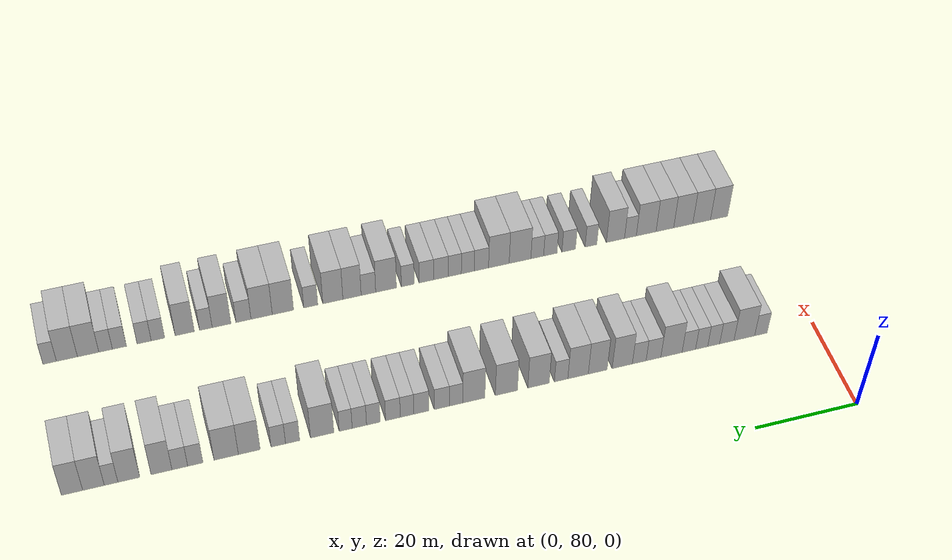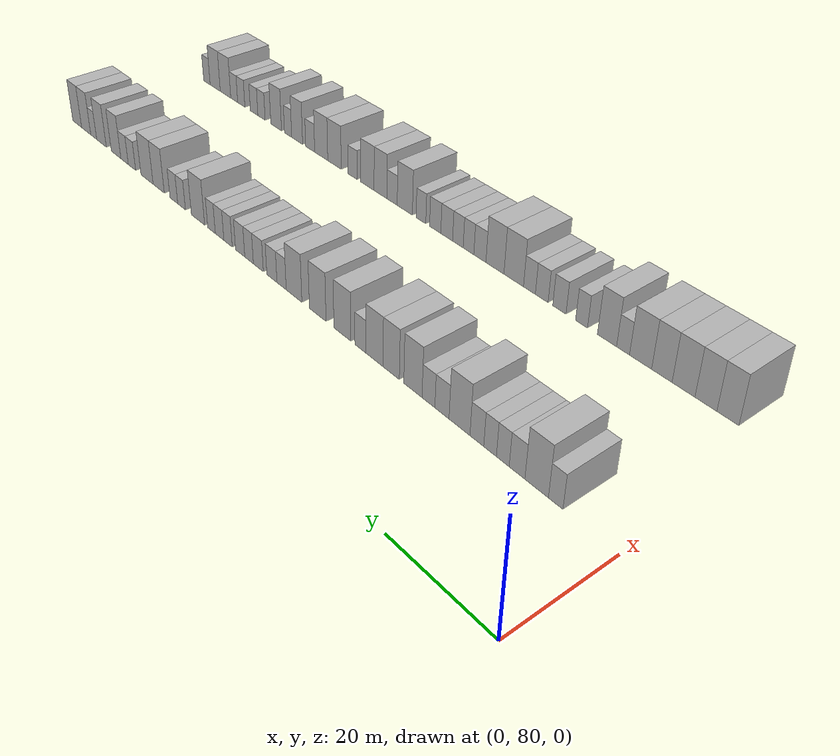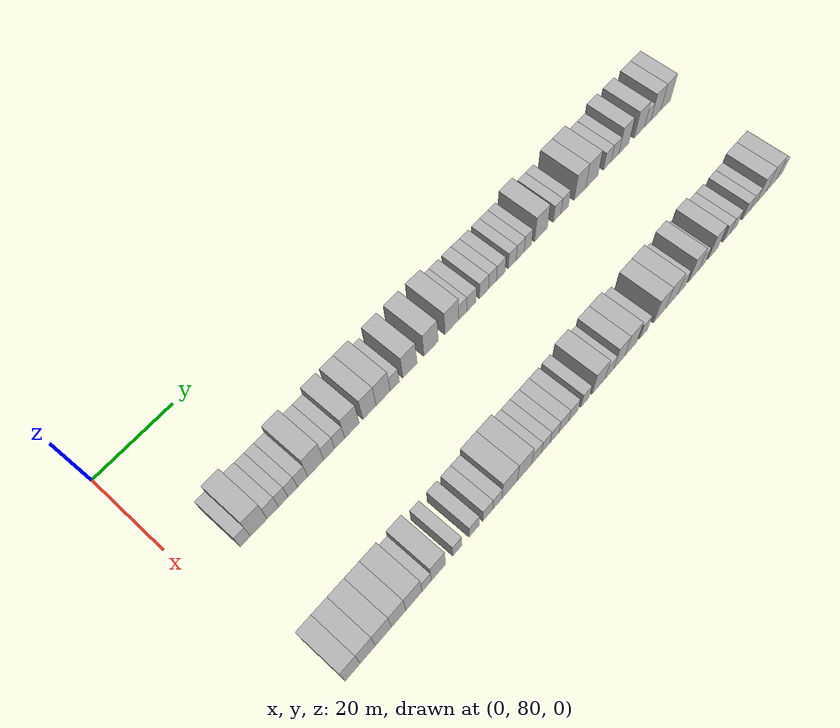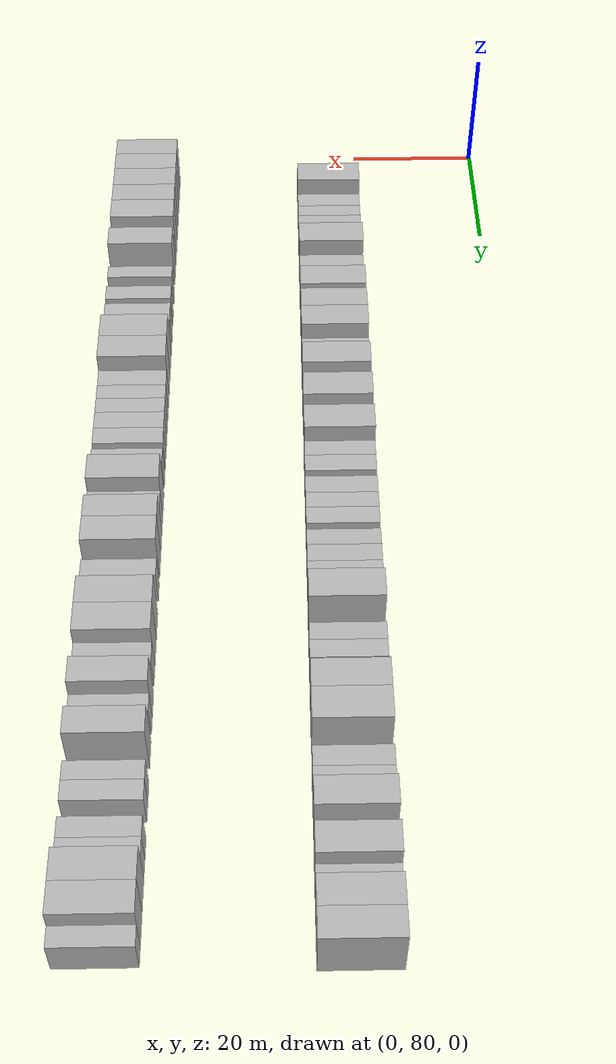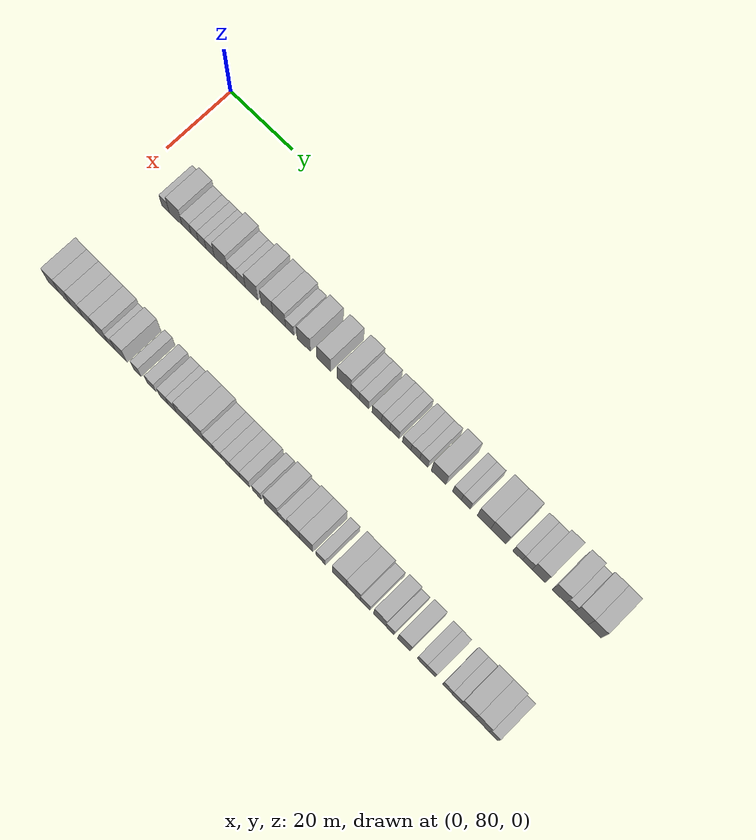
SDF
<sdf version="1.6">
 <world name="default">
  <model name="building_80">
   <static>1</static>
   <pose>25.0000 90.6061 0 0.000000 0.000000 0.000000</pose>
   <link name="link">
    <pose>0 0 3.00 0 0 0</pose>
    <collision name="collision"><geometry><box><size>10.0000 2.5271 6.0000</size></box></geometry></collision>
    <visual name="visual">
     <cast_shadows>0</cast_shadows>
     <geometry><box><size>10.0000 2.5271 6.0000</size></box></geometry>
     <material>
      <script>
       <uri>model://HANNAS_wall/materials/scripts</uri>
       <uri>model://HANNAS_wall/materials/textures</uri>
       <name>vrc/HANNAS_wall</name>
      </script>
     </material>
    </visual>
   </link>
  </model>
  <model name="building_81">
   <static>1</static>
   <pose>25.0000 93.9674 0 0.000000 0.000000 0.000000</pose>
   <link name="link">
    <pose>0 0 4.50 0 0 0</pose>
    <collision name="collision"><geometry><box><size>10.0000 4.1954 9.0000</size></box></geometry></collision>
    <visual name="visual">
     <cast_shadows>0</cast_shadows>
     <geometry><box><size>10.0000 4.1954 9.0000</size></box></geometry>
     <material>
      <script>
       <uri>model://HANNAS_wall/materials/scripts</uri>
       <uri>model://HANNAS_wall/materials/textures</uri>
       <name>vrc/HANNAS_wall</name>
      </script>
     </material>
    </visual>
   </link>
  </model>
  <model name="building_82">
   <static>1</static>
   <pose>25.0000 97.5112 0 0.000000 0.000000 0.000000</pose>
   <link name="link">
    <pose>0 0 3.00 0 0 0</pose>
    <collision name="collision"><geometry><box><size>10.0000 2.8922 6.0000</size></box></geometry></collision>
    <visual name="visual">
     <cast_shadows>0</cast_shadows>
     <geometry><box><size>10.0000 2.8922 6.0000</size></box></geometry>
     <material>
      <script>
       <uri>model://HANNAS_wall/materials/scripts</uri>
       <uri>model://HANNAS_wall/materials/textures</uri>
       <name>vrc/HANNAS_wall</name>
      </script>
     </material>
    </visual>
   </link>
  </model>
  <model name="building_83">
   <static>1</static>
   <pose>25.0000 100.1598 0 0.000000 0.000000 0.000000</pose>
   <link name="link">
    <pose>0 0 3.00 0 0 0</pose>
    <collision name="collision"><geometry><box><size>10.0000 2.4049 6.0000</size></box></geometry></collision>
    <visual name="visual">
     <cast_shadows>0</cast_shadows>
     <geometry><box><size>10.0000 2.4049 6.0000</size></box></geometry>
     <material>
      <script>
       <uri>model://HANNAS_wall/materials/scripts</uri>
       <uri>model://HANNAS_wall/materials/textures</uri>
       <name>vrc/HANNAS_wall</name>
      </script>
     </material>
    </visual>
   </link>
  </model>
  <model name="building_84">
   <static>1</static>
   <pose>25.0000 102.5787 0 0.000000 0.000000 0.000000</pose>
   <link name="link">
    <pose>0 0 3.00 0 0 0</pose>
    <collision name="collision"><geometry><box><size>10.0000 2.4330 6.0000</size></box></geometry></collision>
    <visual name="visual">
     <cast_shadows>0</cast_shadows>
     <geometry><box><size>10.0000 2.4330 6.0000</size></box></geometry>
     <material>
      <script>
       <uri>model://HANNAS_wall/materials/scripts</uri>
       <uri>model://HANNAS_wall/materials/textures</uri>
       <name>vrc/HANNAS_wall</name>
      </script>
     </material>
    </visual>
   </link>
  </model>
  <model name="building_85">
   <static>1</static>
   <pose>25.0000 105.1448 0 0.000000 0.000000 0.000000</pose>
   <link name="link">
    <pose>0 0 3.00 0 0 0</pose>
    <collision name="collision"><geometry><box><size>10.0000 2.6991 6.0000</size></box></geometry></collision>
    <visual name="visual">
     <cast_shadows>0</cast_shadows>
     <geometry><box><size>10.0000 2.6991 6.0000</size></box></geometry>
     <material>
      <script>
       <uri>model://HANNAS_wall/materials/scripts</uri>
       <uri>model://HANNAS_wall/materials/textures</uri>
       <name>vrc/HANNAS_wall</name>
      </script>
     </material>
    </visual>
   </link>
  </model>
  <model name="building_86">
   <static>1</static>
   <pose>25.0000 108.6109 0 0.000000 0.000000 0.000000</pose>
   <link name="link">
    <pose>0 0 4.50 0 0 0</pose>
    <collision name="collision"><geometry><box><size>10.0000 4.2332 9.0000</size></box></geometry></collision>
    <visual name="visual">
     <cast_shadows>0</cast_shadows>
     <geometry><box><size>10.0000 4.2332 9.0000</size></box></geometry>
     <material>
      <script>
       <uri>model://HANNAS_wall/materials/scripts</uri>
       <uri>model://HANNAS_wall/materials/textures</uri>
       <name>vrc/HANNAS_wall</name>
      </script>
     </material>
    </visual>
   </link>
  </model>
  <model name="building_87">
   <static>1</static>
   <pose>25.0000 112.1952 0 0.000000 0.000000 0.000000</pose>
   <link name="link">
    <pose>0 0 3.00 0 0 0</pose>
    <collision name="collision"><geometry><box><size>10.0000 2.9353 6.0000</size></box></geometry></collision>
    <visual name="visual">
     <cast_shadows>0</cast_shadows>
     <geometry><box><size>10.0000 2.9353 6.0000</size></box></geometry>
     <material>
      <script>
       <uri>model://HANNAS_wall/materials/scripts</uri>
       <uri>model://HANNAS_wall/materials/textures</uri>
       <name>vrc/HANNAS_wall</name>
      </script>
     </material>
    </visual>
   </link>
  </model>
  <model name="building_88">
   <static>1</static>
   <pose>25.0000 115.0275 0 0.000000 0.000000 0.000000</pose>
   <link name="link">
    <pose>0 0 3.00 0 0 0</pose>
    <collision name="collision"><geometry><box><size>10.0000 2.7293 6.0000</size></box></geometry></collision>
    <visual name="visual">
     <cast_shadows>0</cast_shadows>
     <geometry><box><size>10.0000 2.7293 6.0000</size></box></geometry>
     <material>
      <script>
       <uri>model://HANNAS_wall/materials/scripts</uri>
       <uri>model://HANNAS_wall/materials/textures</uri>
       <name>vrc/HANNAS_wall</name>
      </script>
     </material>
    </visual>
   </link>
  </model>
  <model name="building_89">
   <static>1</static>
   <pose>25.0000 118.3773 0 0.000000 0.000000 0.000000</pose>
   <link name="link">
    <pose>0 0 4.50 0 0 0</pose>
    <collision name="collision"><geometry><box><size>10.0000 3.9704 9.0000</size></box></geometry></collision>
    <visual name="visual">
     <cast_shadows>0</cast_shadows>
     <geometry><box><size>10.0000 3.9704 9.0000</size></box></geometry>
     <material>
      <script>
       <uri>model://HANNAS_wall/materials/scripts</uri>
       <uri>model://HANNAS_wall/materials/textures</uri>
       <name>vrc/HANNAS_wall</name>
      </script>
     </material>
    </visual>
   </link>
  </model>
  <model name="building_90">
   <static>1</static>
   <pose>25.0000 123.2086 0 0.000000 0.000000 0.000000</pose>
   <link name="link">
    <pose>0 0 4.50 0 0 0</pose>
    <collision name="collision"><geometry><box><size>10.0000 3.6923 9.0000</size></box></geometry></collision>
    <visual name="visual">
     <cast_shadows>0</cast_shadows>
     <geometry><box><size>10.0000 3.6923 9.0000</size></box></geometry>
     <material>
      <script>
       <uri>model://HANNAS_wall/materials/scripts</uri>
       <uri>model://HANNAS_wall/materials/textures</uri>
       <name>vrc/HANNAS_wall</name>
      </script>
     </material>
    </visual>
   </link>
  </model>
  <model name="building_91">
   <static>1</static>
   <pose>25.0000 127.0563 0 0.000000 0.000000 0.000000</pose>
   <link name="link">
    <pose>0 0 4.50 0 0 0</pose>
    <collision name="collision"><geometry><box><size>10.0000 4.0031 9.0000</size></box></geometry></collision>
    <visual name="visual">
     <cast_shadows>0</cast_shadows>
     <geometry><box><size>10.0000 4.0031 9.0000</size></box></geometry>
     <material>
      <script>
       <uri>model://HANNAS_wall/materials/scripts</uri>
       <uri>model://HANNAS_wall/materials/textures</uri>
       <name>vrc/HANNAS_wall</name>
      </script>
     </material>
    </visual>
   </link>
  </model>
  <model name="building_92">
   <static>1</static>
   <pose>25.0000 130.3652 0 0.000000 0.000000 0.000000</pose>
   <link name="link">
    <pose>0 0 3.00 0 0 0</pose>
    <collision name="collision"><geometry><box><size>10.0000 2.6148 6.0000</size></box></geometry></collision>
    <visual name="visual">
     <cast_shadows>0</cast_shadows>
     <geometry><box><size>10.0000 2.6148 6.0000</size></box></geometry>
     <material>
      <script>
       <uri>model://HANNAS_wall/materials/scripts</uri>
       <uri>model://HANNAS_wall/materials/textures</uri>
       <name>vrc/HANNAS_wall</name>
      </script>
     </material>
    </visual>
   </link>
  </model>
  <model name="building_93">
   <static>1</static>
   <pose>25.0000 134.7460 0 0.000000 0.000000 0.000000</pose>
   <link name="link">
    <pose>0 0 4.50 0 0 0</pose>
    <collision name="collision"><geometry><box><size>10.0000 4.1468 9.0000</size></box></geometry></collision>
    <visual name="visual">
     <cast_shadows>0</cast_shadows>
     <geometry><box><size>10.0000 4.1468 9.0000</size></box></geometry>
     <material>
      <script>
       <uri>model://HANNAS_wall/materials/scripts</uri>
       <uri>model://HANNAS_wall/materials/textures</uri>
       <name>vrc/HANNAS_wall</name>
      </script>
     </material>
    </visual>
   </link>
  </model>
  <model name="building_94">
   <static>1</static>
   <pose>25.0000 140.9554 0 0.000000 0.000000 0.000000</pose>
   <link name="link">
    <pose>0 0 4.50 0 0 0</pose>
    <collision name="collision"><geometry><box><size>10.0000 4.2720 9.0000</size></box></geometry></collision>
    <visual name="visual">
     <cast_shadows>0</cast_shadows>
     <geometry><box><size>10.0000 4.2720 9.0000</size></box></geometry>
     <material>
      <script>
       <uri>model://HANNAS_wall/materials/scripts</uri>
       <uri>model://HANNAS_wall/materials/textures</uri>
       <name>vrc/HANNAS_wall</name>
      </script>
     </material>
    </visual>
   </link>
  </model>
  <model name="building_95">
   <static>1</static>
   <pose>25.0000 147.2066 0 0.000000 0.000000 0.000000</pose>
   <link name="link">
    <pose>0 0 4.50 0 0 0</pose>
    <collision name="collision"><geometry><box><size>10.0000 4.2304 9.0000</size></box></geometry></collision>
    <visual name="visual">
     <cast_shadows>0</cast_shadows>
     <geometry><box><size>10.0000 4.2304 9.0000</size></box></geometry>
     <material>
      <script>
       <uri>model://HANNAS_wall/materials/scripts</uri>
       <uri>model://HANNAS_wall/materials/textures</uri>
       <name>vrc/HANNAS_wall</name>
      </script>
     </material>
    </visual>
   </link>
  </model>
  <model name="building_96">
   <static>1</static>
   <pose>25.0000 150.6025 0 0.000000 0.000000 0.000000</pose>
   <link name="link">
    <pose>0 0 3.00 0 0 0</pose>
    <collision name="collision"><geometry><box><size>10.0000 2.5614 6.0000</size></box></geometry></collision>
    <visual name="visual">
     <cast_shadows>0</cast_shadows>
     <geometry><box><size>10.0000 2.5614 6.0000</size></box></geometry>
     <material>
      <script>
       <uri>model://HANNAS_wall/materials/scripts</uri>
       <uri>model://HANNAS_wall/materials/textures</uri>
       <name>vrc/HANNAS_wall</name>
      </script>
     </material>
    </visual>
   </link>
  </model>
  <model name="building_97">
   <static>1</static>
   <pose>25.0000 153.3076 0 0.000000 0.000000 0.000000</pose>
   <link name="link">
    <pose>0 0 3.00 0 0 0</pose>
    <collision name="collision"><geometry><box><size>10.0000 2.8488 6.0000</size></box></geometry></collision>
    <visual name="visual">
     <cast_shadows>0</cast_shadows>
     <geometry><box><size>10.0000 2.8488 6.0000</size></box></geometry>
     <material>
      <script>
       <uri>model://HANNAS_wall/materials/scripts</uri>
       <uri>model://HANNAS_wall/materials/textures</uri>
       <name>vrc/HANNAS_wall</name>
      </script>
     </material>
    </visual>
   </link>
  </model>
  <model name="building_98">
   <static>1</static>
   <pose>25.0000 157.1678 0 0.000000 0.000000 0.000000</pose>
   <link name="link">
    <pose>0 0 3.00 0 0 0</pose>
    <collision name="collision"><geometry><box><size>10.0000 2.8716 6.0000</size></box></geometry></collision>
    <visual name="visual">
     <cast_shadows>0</cast_shadows>
     <geometry><box><size>10.0000 2.8716 6.0000</size></box></geometry>
     <material>
      <script>
       <uri>model://HANNAS_wall/materials/scripts</uri>
       <uri>model://HANNAS_wall/materials/textures</uri>
       <name>vrc/HANNAS_wall</name>
      </script>
     </material>
    </visual>
   </link>
  </model>
  <model name="building_99">
   <static>1</static>
   <pose>25.0000 159.8718 0 0.000000 0.000000 0.000000</pose>
   <link name="link">
    <pose>0 0 3.00 0 0 0</pose>
    <collision name="collision"><geometry><box><size>10.0000 2.5365 6.0000</size></box></geometry></collision>
    <visual name="visual">
     <cast_shadows>0</cast_shadows>
     <geometry><box><size>10.0000 2.5365 6.0000</size></box></geometry>
     <material>
      <script>
       <uri>model://HANNAS_wall/materials/scripts</uri>
       <uri>model://HANNAS_wall/materials/textures</uri>
       <name>vrc/HANNAS_wall</name>
      </script>
     </material>
    </visual>
   </link>
  </model>
  <model name="building_100">
   <static>1</static>
   <pose>25.0000 162.5219 0 0.000000 0.000000 0.000000</pose>
   <link name="link">
    <pose>0 0 3.00 0 0 0</pose>
    <collision name="collision"><geometry><box><size>10.0000 2.7637 6.0000</size></box></geometry></collision>
    <visual name="visual">
     <cast_shadows>0</cast_shadows>
     <geometry><box><size>10.0000 2.7637 6.0000</size></box></geometry>
     <material>
      <script>
       <uri>model://HANNAS_wall/materials/scripts</uri>
       <uri>model://HANNAS_wall/materials/textures</uri>
       <name>vrc/HANNAS_wall</name>
      </script>
     </material>
    </visual>
   </link>
  </model>
  <model name="building_101">
   <static>1</static>
   <pose>25.0000 166.1852 0 0.000000 0.000000 0.000000</pose>
   <link name="link">
    <pose>0 0 3.00 0 0 0</pose>
    <collision name="collision"><geometry><box><size>10.0000 2.5629 6.0000</size></box></geometry></collision>
    <visual name="visual">
     <cast_shadows>0</cast_shadows>
     <geometry><box><size>10.0000 2.5629 6.0000</size></box></geometry>
     <material>
      <script>
       <uri>model://HANNAS_wall/materials/scripts</uri>
       <uri>model://HANNAS_wall/materials/textures</uri>
       <name>vrc/HANNAS_wall</name>
      </script>
     </material>
    </visual>
   </link>
  </model>
  <model name="building_102">
   <static>1</static>
   <pose>25.0000 168.8038 0 0.000000 0.000000 0.000000</pose>
   <link name="link">
    <pose>0 0 3.00 0 0 0</pose>
    <collision name="collision"><geometry><box><size>10.0000 2.6742 6.0000</size></box></geometry></collision>
    <visual name="visual">
     <cast_shadows>0</cast_shadows>
     <geometry><box><size>10.0000 2.6742 6.0000</size></box></geometry>
     <material>
      <script>
       <uri>model://HANNAS_wall/materials/scripts</uri>
       <uri>model://HANNAS_wall/materials/textures</uri>
       <name>vrc/HANNAS_wall</name>
      </script>
     </material>
    </visual>
   </link>
  </model>
  <model name="building_103">
   <static>1</static>
   <pose>25.0000 171.3430 0 0.000000 0.000000 0.000000</pose>
   <link name="link">
    <pose>0 0 3.00 0 0 0</pose>
    <collision name="collision"><geometry><box><size>10.0000 2.4043 6.0000</size></box></geometry></collision>
    <visual name="visual">
     <cast_shadows>0</cast_shadows>
     <geometry><box><size>10.0000 2.4043 6.0000</size></box></geometry>
     <material>
      <script>
       <uri>model://HANNAS_wall/materials/scripts</uri>
       <uri>model://HANNAS_wall/materials/textures</uri>
       <name>vrc/HANNAS_wall</name>
      </script>
     </material>
    </visual>
   </link>
  </model>
  <model name="building_104">
   <static>1</static>
   <pose>25.0000 175.7016 0 0.000000 0.000000 0.000000</pose>
   <link name="link">
    <pose>0 0 4.50 0 0 0</pose>
    <collision name="collision"><geometry><box><size>10.0000 4.3127 9.0000</size></box></geometry></collision>
    <visual name="visual">
     <cast_shadows>0</cast_shadows>
     <geometry><box><size>10.0000 4.3127 9.0000</size></box></geometry>
     <material>
      <script>
       <uri>model://HANNAS_wall/materials/scripts</uri>
       <uri>model://HANNAS_wall/materials/textures</uri>
       <name>vrc/HANNAS_wall</name>
      </script>
     </material>
    </visual>
   </link>
  </model>
  <model name="building_105">
   <static>1</static>
   <pose>25.0000 181.1595 0 0.000000 0.000000 0.000000</pose>
   <link name="link">
    <pose>0 0 3.00 0 0 0</pose>
    <collision name="collision"><geometry><box><size>10.0000 2.6031 6.0000</size></box></geometry></collision>
    <visual name="visual">
     <cast_shadows>0</cast_shadows>
     <geometry><box><size>10.0000 2.6031 6.0000</size></box></geometry>
     <material>
      <script>
       <uri>model://HANNAS_wall/materials/scripts</uri>
       <uri>model://HANNAS_wall/materials/textures</uri>
       <name>vrc/HANNAS_wall</name>
      </script>
     </material>
    </visual>
   </link>
  </model>
  <model name="building_106">
   <static>1</static>
   <pose>25.0000 183.7843 0 0.000000 0.000000 0.000000</pose>
   <link name="link">
    <pose>0 0 3.00 0 0 0</pose>
    <collision name="collision"><geometry><box><size>10.0000 2.6465 6.0000</size></box></geometry></collision>
    <visual name="visual">
     <cast_shadows>0</cast_shadows>
     <geometry><box><size>10.0000 2.6465 6.0000</size></box></geometry>
     <material>
      <script>
       <uri>model://HANNAS_wall/materials/scripts</uri>
       <uri>model://HANNAS_wall/materials/textures</uri>
       <name>vrc/HANNAS_wall</name>
      </script>
     </material>
    </visual>
   </link>
  </model>
  <model name="building_107">
   <static>1</static>
   <pose>25.0000 189.0922 0 0.000000 0.000000 0.000000</pose>
   <link name="link">
    <pose>0 0 4.50 0 0 0</pose>
    <collision name="collision"><geometry><box><size>10.0000 3.9694 9.0000</size></box></geometry></collision>
    <visual name="visual">
     <cast_shadows>0</cast_shadows>
     <geometry><box><size>10.0000 3.9694 9.0000</size></box></geometry>
     <material>
      <script>
       <uri>model://HANNAS_wall/materials/scripts</uri>
       <uri>model://HANNAS_wall/materials/textures</uri>
       <name>vrc/HANNAS_wall</name>
      </script>
     </material>
    </visual>
   </link>
  </model>
  <model name="building_108">
   <static>1</static>
   <pose>25.0000 193.2853 0 0.000000 0.000000 0.000000</pose>
   <link name="link">
    <pose>0 0 4.50 0 0 0</pose>
    <collision name="collision"><geometry><box><size>10.0000 4.4167 9.0000</size></box></geometry></collision>
    <visual name="visual">
     <cast_shadows>0</cast_shadows>
     <geometry><box><size>10.0000 4.4167 9.0000</size></box></geometry>
     <material>
      <script>
       <uri>model://HANNAS_wall/materials/scripts</uri>
       <uri>model://HANNAS_wall/materials/textures</uri>
       <name>vrc/HANNAS_wall</name>
      </script>
     </material>
    </visual>
   </link>
  </model>
  <model name="building_109">
   <static>1</static>
   <pose>25.0000 198.8710 0 0.000000 0.000000 0.000000</pose>
   <link name="link">
    <pose>0 0 3.00 0 0 0</pose>
    <collision name="collision"><geometry><box><size>10.0000 2.7548 6.0000</size></box></geometry></collision>
    <visual name="visual">
     <cast_shadows>0</cast_shadows>
     <geometry><box><size>10.0000 2.7548 6.0000</size></box></geometry>
     <material>
      <script>
       <uri>model://HANNAS_wall/materials/scripts</uri>
       <uri>model://HANNAS_wall/materials/textures</uri>
       <name>vrc/HANNAS_wall</name>
      </script>
     </material>
    </visual>
   </link>
  </model>
  <model name="building_110">
   <static>1</static>
   <pose>25.0000 201.6601 0 0.000000 0.000000 0.000000</pose>
   <link name="link">
    <pose>0 0 3.00 0 0 0</pose>
    <collision name="collision"><geometry><box><size>10.0000 2.8233 6.0000</size></box></geometry></collision>
    <visual name="visual">
     <cast_shadows>0</cast_shadows>
     <geometry><box><size>10.0000 2.8233 6.0000</size></box></geometry>
     <material>
      <script>
       <uri>model://HANNAS_wall/materials/scripts</uri>
       <uri>model://HANNAS_wall/materials/textures</uri>
       <name>vrc/HANNAS_wall</name>
      </script>
     </material>
    </visual>
   </link>
  </model>
  <model name="building_111">
   <static>1</static>
   <pose>25.0000 204.9419 0 0.000000 0.000000 0.000000</pose>
   <link name="link">
    <pose>0 0 4.50 0 0 0</pose>
    <collision name="collision"><geometry><box><size>10.0000 3.7403 9.0000</size></box></geometry></collision>
    <visual name="visual">
     <cast_shadows>0</cast_shadows>
     <geometry><box><size>10.0000 3.7403 9.0000</size></box></geometry>
     <material>
      <script>
       <uri>model://HANNAS_wall/materials/scripts</uri>
       <uri>model://HANNAS_wall/materials/textures</uri>
       <name>vrc/HANNAS_wall</name>
      </script>
     </material>
    </visual>
   </link>
  </model>
  <model name="building_112">
   <static>1</static>
   <pose>25.0000 210.7597 0 0.000000 0.000000 0.000000</pose>
   <link name="link">
    <pose>0 0 4.50 0 0 0</pose>
    <collision name="collision"><geometry><box><size>10.0000 3.8953 9.0000</size></box></geometry></collision>
    <visual name="visual">
     <cast_shadows>0</cast_shadows>
     <geometry><box><size>10.0000 3.8953 9.0000</size></box></geometry>
     <material>
      <script>
       <uri>model://HANNAS_wall/materials/scripts</uri>
       <uri>model://HANNAS_wall/materials/textures</uri>
       <name>vrc/HANNAS_wall</name>
      </script>
     </material>
    </visual>
   </link>
  </model>
  <model name="building_113">
   <static>1</static>
   <pose>25.0000 213.9139 0 0.000000 0.000000 0.000000</pose>
   <link name="link">
    <pose>0 0 3.00 0 0 0</pose>
    <collision name="collision"><geometry><box><size>10.0000 2.4132 6.0000</size></box></geometry></collision>
    <visual name="visual">
     <cast_shadows>0</cast_shadows>
     <geometry><box><size>10.0000 2.4132 6.0000</size></box></geometry>
     <material>
      <script>
       <uri>model://HANNAS_wall/materials/scripts</uri>
       <uri>model://HANNAS_wall/materials/textures</uri>
       <name>vrc/HANNAS_wall</name>
      </script>
     </material>
    </visual>
   </link>
  </model>
  <model name="building_114">
   <static>1</static>
   <pose>25.0000 217.0253 0 0.000000 0.000000 0.000000</pose>
   <link name="link">
    <pose>0 0 4.50 0 0 0</pose>
    <collision name="collision"><geometry><box><size>10.0000 3.8096 9.0000</size></box></geometry></collision>
    <visual name="visual">
     <cast_shadows>0</cast_shadows>
     <geometry><box><size>10.0000 3.8096 9.0000</size></box></geometry>
     <material>
      <script>
       <uri>model://HANNAS_wall/materials/scripts</uri>
       <uri>model://HANNAS_wall/materials/textures</uri>
       <name>vrc/HANNAS_wall</name>
      </script>
     </material>
    </visual>
   </link>
  </model>
  <model name="building_115">
   <static>1</static>
   <pose>25.0000 220.8041 0 0.000000 0.000000 0.000000</pose>
   <link name="link">
    <pose>0 0 4.50 0 0 0</pose>
    <collision name="collision"><geometry><box><size>10.0000 3.7479 9.0000</size></box></geometry></collision>
    <visual name="visual">
     <cast_shadows>0</cast_shadows>
     <geometry><box><size>10.0000 3.7479 9.0000</size></box></geometry>
     <material>
      <script>
       <uri>model://HANNAS_wall/materials/scripts</uri>
       <uri>model://HANNAS_wall/materials/textures</uri>
       <name>vrc/HANNAS_wall</name>
      </script>
     </material>
    </visual>
   </link>
  </model>
  <model name="building_182">
   <static>1</static>
   <pose>55.0000 87.0166 0 0.000000 0.000000 0.000000</pose>
   <link name="link">
    <pose>0 0 4.50 0 0 0</pose>
    <collision name="collision"><geometry><box><size>10.0000 3.6832 9.0000</size></box></geometry></collision>
    <visual name="visual">
     <cast_shadows>0</cast_shadows>
     <geometry><box><size>10.0000 3.6832 9.0000</size></box></geometry>
     <material>
      <script>
       <uri>model://HANNAS_wall/materials/scripts</uri>
       <uri>model://HANNAS_wall/materials/textures</uri>
       <name>vrc/HANNAS_wall</name>
      </script>
     </material>
    </visual>
   </link>
  </model>
  <model name="building_183">
   <static>1</static>
   <pose>55.0000 90.7439 0 0.000000 0.000000 0.000000</pose>
   <link name="link">
    <pose>0 0 4.50 0 0 0</pose>
    <collision name="collision"><geometry><box><size>10.0000 3.7714 9.0000</size></box></geometry></collision>
    <visual name="visual">
     <cast_shadows>0</cast_shadows>
     <geometry><box><size>10.0000 3.7714 9.0000</size></box></geometry>
     <material>
      <script>
       <uri>model://HANNAS_wall/materials/scripts</uri>
       <uri>model://HANNAS_wall/materials/textures</uri>
       <name>vrc/HANNAS_wall</name>
      </script>
     </material>
    </visual>
   </link>
  </model>
  <model name="building_184">
   <static>1</static>
   <pose>55.0000 94.6621 0 0.000000 0.000000 0.000000</pose>
   <link name="link">
    <pose>0 0 4.50 0 0 0</pose>
    <collision name="collision"><geometry><box><size>10.0000 4.0651 9.0000</size></box></geometry></collision>
    <visual name="visual">
     <cast_shadows>0</cast_shadows>
     <geometry><box><size>10.0000 4.0651 9.0000</size></box></geometry>
     <material>
      <script>
       <uri>model://HANNAS_wall/materials/scripts</uri>
       <uri>model://HANNAS_wall/materials/textures</uri>
       <name>vrc/HANNAS_wall</name>
      </script>
     </material>
    </visual>
   </link>
  </model>
  <model name="building_185">
   <static>1</static>
   <pose>55.0000 98.5651 0 0.000000 0.000000 0.000000</pose>
   <link name="link">
    <pose>0 0 4.50 0 0 0</pose>
    <collision name="collision"><geometry><box><size>10.0000 3.7410 9.0000</size></box></geometry></collision>
    <visual name="visual">
     <cast_shadows>0</cast_shadows>
     <geometry><box><size>10.0000 3.7410 9.0000</size></box></geometry>
     <material>
      <script>
       <uri>model://HANNAS_wall/materials/scripts</uri>
       <uri>model://HANNAS_wall/materials/textures</uri>
       <name>vrc/HANNAS_wall</name>
      </script>
     </material>
    </visual>
   </link>
  </model>
  <model name="building_186">
   <static>1</static>
   <pose>55.0000 102.5212 0 0.000000 0.000000 0.000000</pose>
   <link name="link">
    <pose>0 0 4.50 0 0 0</pose>
    <collision name="collision"><geometry><box><size>10.0000 4.1711 9.0000</size></box></geometry></collision>
    <visual name="visual">
     <cast_shadows>0</cast_shadows>
     <geometry><box><size>10.0000 4.1711 9.0000</size></box></geometry>
     <material>
      <script>
       <uri>model://HANNAS_wall/materials/scripts</uri>
       <uri>model://HANNAS_wall/materials/textures</uri>
       <name>vrc/HANNAS_wall</name>
      </script>
     </material>
    </visual>
   </link>
  </model>
  <model name="building_187">
   <static>1</static>
   <pose>55.0000 105.8501 0 0.000000 0.000000 0.000000</pose>
   <link name="link">
    <pose>0 0 3.00 0 0 0</pose>
    <collision name="collision"><geometry><box><size>10.0000 2.4868 6.0000</size></box></geometry></collision>
    <visual name="visual">
     <cast_shadows>0</cast_shadows>
     <geometry><box><size>10.0000 2.4868 6.0000</size></box></geometry>
     <material>
      <script>
       <uri>model://HANNAS_wall/materials/scripts</uri>
       <uri>model://HANNAS_wall/materials/textures</uri>
       <name>vrc/HANNAS_wall</name>
      </script>
     </material>
    </visual>
   </link>
  </model>
  <model name="building_188">
   <static>1</static>
   <pose>55.0000 108.9894 0 0.000000 0.000000 0.000000</pose>
   <link name="link">
    <pose>0 0 4.50 0 0 0</pose>
    <collision name="collision"><geometry><box><size>10.0000 3.7918 9.0000</size></box></geometry></collision>
    <visual name="visual">
     <cast_shadows>0</cast_shadows>
     <geometry><box><size>10.0000 3.7918 9.0000</size></box></geometry>
     <material>
      <script>
       <uri>model://HANNAS_wall/materials/scripts</uri>
       <uri>model://HANNAS_wall/materials/textures</uri>
       <name>vrc/HANNAS_wall</name>
      </script>
     </material>
    </visual>
   </link>
  </model>
  <model name="building_189">
   <static>1</static>
   <pose>55.0000 114.1092 0 0.000000 0.000000 0.000000</pose>
   <link name="link">
    <pose>0 0 3.00 0 0 0</pose>
    <collision name="collision"><geometry><box><size>10.0000 2.4477 6.0000</size></box></geometry></collision>
    <visual name="visual">
     <cast_shadows>0</cast_shadows>
     <geometry><box><size>10.0000 2.4477 6.0000</size></box></geometry>
     <material>
      <script>
       <uri>model://HANNAS_wall/materials/scripts</uri>
       <uri>model://HANNAS_wall/materials/textures</uri>
       <name>vrc/HANNAS_wall</name>
      </script>
     </material>
    </visual>
   </link>
  </model>
  <model name="building_190">
   <static>1</static>
   <pose>55.0000 118.7424 0 0.000000 0.000000 0.000000</pose>
   <link name="link">
    <pose>0 0 3.00 0 0 0</pose>
    <collision name="collision"><geometry><box><size>10.0000 2.8186 6.0000</size></box></geometry></collision>
    <visual name="visual">
     <cast_shadows>0</cast_shadows>
     <geometry><box><size>10.0000 2.8186 6.0000</size></box></geometry>
     <material>
      <script>
       <uri>model://HANNAS_wall/materials/scripts</uri>
       <uri>model://HANNAS_wall/materials/textures</uri>
       <name>vrc/HANNAS_wall</name>
      </script>
     </material>
    </visual>
   </link>
  </model>
  <model name="building_191">
   <static>1</static>
   <pose>55.0000 122.5377 0 0.000000 0.000000 0.000000</pose>
   <link name="link">
    <pose>0 0 3.00 0 0 0</pose>
    <collision name="collision"><geometry><box><size>10.0000 2.7719 6.0000</size></box></geometry></collision>
    <visual name="visual">
     <cast_shadows>0</cast_shadows>
     <geometry><box><size>10.0000 2.7719 6.0000</size></box></geometry>
     <material>
      <script>
       <uri>model://HANNAS_wall/materials/scripts</uri>
       <uri>model://HANNAS_wall/materials/textures</uri>
       <name>vrc/HANNAS_wall</name>
      </script>
     </material>
    </visual>
   </link>
  </model>
  <model name="building_192">
   <static>1</static>
   <pose>55.0000 125.2414 0 0.000000 0.000000 0.000000</pose>
   <link name="link">
    <pose>0 0 3.00 0 0 0</pose>
    <collision name="collision"><geometry><box><size>10.0000 2.6355 6.0000</size></box></geometry></collision>
    <visual name="visual">
     <cast_shadows>0</cast_shadows>
     <geometry><box><size>10.0000 2.6355 6.0000</size></box></geometry>
     <material>
      <script>
       <uri>model://HANNAS_wall/materials/scripts</uri>
       <uri>model://HANNAS_wall/materials/textures</uri>
       <name>vrc/HANNAS_wall</name>
      </script>
     </material>
    </visual>
   </link>
  </model>
  <model name="building_193">
   <static>1</static>
   <pose>55.0000 128.7856 0 0.000000 0.000000 0.000000</pose>
   <link name="link">
    <pose>0 0 4.50 0 0 0</pose>
    <collision name="collision"><geometry><box><size>10.0000 4.4530 9.0000</size></box></geometry></collision>
    <visual name="visual">
     <cast_shadows>0</cast_shadows>
     <geometry><box><size>10.0000 4.4530 9.0000</size></box></geometry>
     <material>
      <script>
       <uri>model://HANNAS_wall/materials/scripts</uri>
       <uri>model://HANNAS_wall/materials/textures</uri>
       <name>vrc/HANNAS_wall</name>
      </script>
     </material>
    </visual>
   </link>
  </model>
  <model name="building_194">
   <static>1</static>
   <pose>55.0000 133.1236 0 0.000000 0.000000 0.000000</pose>
   <link name="link">
    <pose>0 0 4.50 0 0 0</pose>
    <collision name="collision"><geometry><box><size>10.0000 4.2229 9.0000</size></box></geometry></collision>
    <visual name="visual">
     <cast_shadows>0</cast_shadows>
     <geometry><box><size>10.0000 4.2229 9.0000</size></box></geometry>
     <material>
      <script>
       <uri>model://HANNAS_wall/materials/scripts</uri>
       <uri>model://HANNAS_wall/materials/textures</uri>
       <name>vrc/HANNAS_wall</name>
      </script>
     </material>
    </visual>
   </link>
  </model>
  <model name="building_195">
   <static>1</static>
   <pose>55.0000 136.6932 0 0.000000 0.000000 0.000000</pose>
   <link name="link">
    <pose>0 0 3.00 0 0 0</pose>
    <collision name="collision"><geometry><box><size>10.0000 2.9164 6.0000</size></box></geometry></collision>
    <visual name="visual">
     <cast_shadows>0</cast_shadows>
     <geometry><box><size>10.0000 2.9164 6.0000</size></box></geometry>
     <material>
      <script>
       <uri>model://HANNAS_wall/materials/scripts</uri>
       <uri>model://HANNAS_wall/materials/textures</uri>
       <name>vrc/HANNAS_wall</name>
      </script>
     </material>
    </visual>
   </link>
  </model>
  <model name="building_196">
   <static>1</static>
   <pose>55.0000 139.4573 0 0.000000 0.000000 0.000000</pose>
   <link name="link">
    <pose>0 0 3.00 0 0 0</pose>
    <collision name="collision"><geometry><box><size>10.0000 2.6117 6.0000</size></box></geometry></collision>
    <visual name="visual">
     <cast_shadows>0</cast_shadows>
     <geometry><box><size>10.0000 2.6117 6.0000</size></box></geometry>
     <material>
      <script>
       <uri>model://HANNAS_wall/materials/scripts</uri>
       <uri>model://HANNAS_wall/materials/textures</uri>
       <name>vrc/HANNAS_wall</name>
      </script>
     </material>
    </visual>
   </link>
  </model>
  <model name="building_197">
   <static>1</static>
   <pose>55.0000 142.0820 0 0.000000 0.000000 0.000000</pose>
   <link name="link">
    <pose>0 0 3.00 0 0 0</pose>
    <collision name="collision"><geometry><box><size>10.0000 2.6376 6.0000</size></box></geometry></collision>
    <visual name="visual">
     <cast_shadows>0</cast_shadows>
     <geometry><box><size>10.0000 2.6376 6.0000</size></box></geometry>
     <material>
      <script>
       <uri>model://HANNAS_wall/materials/scripts</uri>
       <uri>model://HANNAS_wall/materials/textures</uri>
       <name>vrc/HANNAS_wall</name>
      </script>
     </material>
    </visual>
   </link>
  </model>
  <model name="building_198">
   <static>1</static>
   <pose>55.0000 144.8973 0 0.000000 0.000000 0.000000</pose>
   <link name="link">
    <pose>0 0 3.00 0 0 0</pose>
    <collision name="collision"><geometry><box><size>10.0000 2.9931 6.0000</size></box></geometry></collision>
    <visual name="visual">
     <cast_shadows>0</cast_shadows>
     <geometry><box><size>10.0000 2.9931 6.0000</size></box></geometry>
     <material>
      <script>
       <uri>model://HANNAS_wall/materials/scripts</uri>
       <uri>model://HANNAS_wall/materials/textures</uri>
       <name>vrc/HANNAS_wall</name>
      </script>
     </material>
    </visual>
   </link>
  </model>
  <model name="building_199">
   <static>1</static>
   <pose>55.0000 147.8379 0 0.000000 0.000000 0.000000</pose>
   <link name="link">
    <pose>0 0 3.00 0 0 0</pose>
    <collision name="collision"><geometry><box><size>10.0000 2.8881 6.0000</size></box></geometry></collision>
    <visual name="visual">
     <cast_shadows>0</cast_shadows>
     <geometry><box><size>10.0000 2.8881 6.0000</size></box></geometry>
     <material>
      <script>
       <uri>model://HANNAS_wall/materials/scripts</uri>
       <uri>model://HANNAS_wall/materials/textures</uri>
       <name>vrc/HANNAS_wall</name>
      </script>
     </material>
    </visual>
   </link>
  </model>
  <model name="building_200">
   <static>1</static>
   <pose>55.0000 151.5623 0 0.000000 0.000000 0.000000</pose>
   <link name="link">
    <pose>0 0 3.00 0 0 0</pose>
    <collision name="collision"><geometry><box><size>10.0000 2.5606 6.0000</size></box></geometry></collision>
    <visual name="visual">
     <cast_shadows>0</cast_shadows>
     <geometry><box><size>10.0000 2.5606 6.0000</size></box></geometry>
     <material>
      <script>
       <uri>model://HANNAS_wall/materials/scripts</uri>
       <uri>model://HANNAS_wall/materials/textures</uri>
       <name>vrc/HANNAS_wall</name>
      </script>
     </material>
    </visual>
   </link>
  </model>
  <model name="building_201">
   <static>1</static>
   <pose>55.0000 155.9085 0 0.000000 0.000000 0.000000</pose>
   <link name="link">
    <pose>0 0 4.50 0 0 0</pose>
    <collision name="collision"><geometry><box><size>10.0000 4.1317 9.0000</size></box></geometry></collision>
    <visual name="visual">
     <cast_shadows>0</cast_shadows>
     <geometry><box><size>10.0000 4.1317 9.0000</size></box></geometry>
     <material>
      <script>
       <uri>model://HANNAS_wall/materials/scripts</uri>
       <uri>model://HANNAS_wall/materials/textures</uri>
       <name>vrc/HANNAS_wall</name>
      </script>
     </material>
    </visual>
   </link>
  </model>
  <model name="building_202">
   <static>1</static>
   <pose>55.0000 159.4201 0 0.000000 0.000000 0.000000</pose>
   <link name="link">
    <pose>0 0 3.00 0 0 0</pose>
    <collision name="collision"><geometry><box><size>10.0000 2.8915 6.0000</size></box></geometry></collision>
    <visual name="visual">
     <cast_shadows>0</cast_shadows>
     <geometry><box><size>10.0000 2.8915 6.0000</size></box></geometry>
     <material>
      <script>
       <uri>model://HANNAS_wall/materials/scripts</uri>
       <uri>model://HANNAS_wall/materials/textures</uri>
       <name>vrc/HANNAS_wall</name>
      </script>
     </material>
    </visual>
   </link>
  </model>
  <model name="building_203">
   <static>1</static>
   <pose>55.0000 162.6734 0 0.000000 0.000000 0.000000</pose>
   <link name="link">
    <pose>0 0 4.50 0 0 0</pose>
    <collision name="collision"><geometry><box><size>10.0000 3.6151 9.0000</size></box></geometry></collision>
    <visual name="visual">
     <cast_shadows>0</cast_shadows>
     <geometry><box><size>10.0000 3.6151 9.0000</size></box></geometry>
     <material>
      <script>
       <uri>model://HANNAS_wall/materials/scripts</uri>
       <uri>model://HANNAS_wall/materials/textures</uri>
       <name>vrc/HANNAS_wall</name>
      </script>
     </material>
    </visual>
   </link>
  </model>
  <model name="building_204">
   <static>1</static>
   <pose>55.0000 166.4540 0 0.000000 0.000000 0.000000</pose>
   <link name="link">
    <pose>0 0 4.50 0 0 0</pose>
    <collision name="collision"><geometry><box><size>10.0000 3.9462 9.0000</size></box></geometry></collision>
    <visual name="visual">
     <cast_shadows>0</cast_shadows>
     <geometry><box><size>10.0000 3.9462 9.0000</size></box></geometry>
     <material>
      <script>
       <uri>model://HANNAS_wall/materials/scripts</uri>
       <uri>model://HANNAS_wall/materials/textures</uri>
       <name>vrc/HANNAS_wall</name>
      </script>
     </material>
    </visual>
   </link>
  </model>
  <model name="building_205">
   <static>1</static>
   <pose>55.0000 170.8050 0 0.000000 0.000000 0.000000</pose>
   <link name="link">
    <pose>0 0 3.00 0 0 0</pose>
    <collision name="collision"><geometry><box><size>10.0000 2.7558 6.0000</size></box></geometry></collision>
    <visual name="visual">
     <cast_shadows>0</cast_shadows>
     <geometry><box><size>10.0000 2.7558 6.0000</size></box></geometry>
     <material>
      <script>
       <uri>model://HANNAS_wall/materials/scripts</uri>
       <uri>model://HANNAS_wall/materials/textures</uri>
       <name>vrc/HANNAS_wall</name>
      </script>
     </material>
    </visual>
   </link>
  </model>
  <model name="building_206">
   <static>1</static>
   <pose>55.0000 176.2587 0 0.000000 0.000000 0.000000</pose>
   <link name="link">
    <pose>0 0 4.50 0 0 0</pose>
    <collision name="collision"><geometry><box><size>10.0000 4.1518 9.0000</size></box></geometry></collision>
    <visual name="visual">
     <cast_shadows>0</cast_shadows>
     <geometry><box><size>10.0000 4.1518 9.0000</size></box></geometry>
     <material>
      <script>
       <uri>model://HANNAS_wall/materials/scripts</uri>
       <uri>model://HANNAS_wall/materials/textures</uri>
       <name>vrc/HANNAS_wall</name>
      </script>
     </material>
    </visual>
   </link>
  </model>
  <model name="building_207">
   <static>1</static>
   <pose>55.0000 180.4015 0 0.000000 0.000000 0.000000</pose>
   <link name="link">
    <pose>0 0 4.50 0 0 0</pose>
    <collision name="collision"><geometry><box><size>10.0000 4.1338 9.0000</size></box></geometry></collision>
    <visual name="visual">
     <cast_shadows>0</cast_shadows>
     <geometry><box><size>10.0000 4.1338 9.0000</size></box></geometry>
     <material>
      <script>
       <uri>model://HANNAS_wall/materials/scripts</uri>
       <uri>model://HANNAS_wall/materials/textures</uri>
       <name>vrc/HANNAS_wall</name>
      </script>
     </material>
    </visual>
   </link>
  </model>
  <model name="building_208">
   <static>1</static>
   <pose>55.0000 183.9174 0 0.000000 0.000000 0.000000</pose>
   <link name="link">
    <pose>0 0 3.00 0 0 0</pose>
    <collision name="collision"><geometry><box><size>10.0000 2.8979 6.0000</size></box></geometry></collision>
    <visual name="visual">
     <cast_shadows>0</cast_shadows>
     <geometry><box><size>10.0000 2.8979 6.0000</size></box></geometry>
     <material>
      <script>
       <uri>model://HANNAS_wall/materials/scripts</uri>
       <uri>model://HANNAS_wall/materials/textures</uri>
       <name>vrc/HANNAS_wall</name>
      </script>
     </material>
    </visual>
   </link>
  </model>
  <model name="building_209">
   <static>1</static>
   <pose>55.0000 188.1710 0 0.000000 0.000000 0.000000</pose>
   <link name="link">
    <pose>0 0 4.50 0 0 0</pose>
    <collision name="collision"><geometry><box><size>10.0000 3.6094 9.0000</size></box></geometry></collision>
    <visual name="visual">
     <cast_shadows>0</cast_shadows>
     <geometry><box><size>10.0000 3.6094 9.0000</size></box></geometry>
     <material>
      <script>
       <uri>model://HANNAS_wall/materials/scripts</uri>
       <uri>model://HANNAS_wall/materials/textures</uri>
       <name>vrc/HANNAS_wall</name>
      </script>
     </material>
    </visual>
   </link>
  </model>
  <model name="building_210">
   <static>1</static>
   <pose>55.0000 191.1863 0 0.000000 0.000000 0.000000</pose>
   <link name="link">
    <pose>0 0 3.00 0 0 0</pose>
    <collision name="collision"><geometry><box><size>10.0000 2.4211 6.0000</size></box></geometry></collision>
    <visual name="visual">
     <cast_shadows>0</cast_shadows>
     <geometry><box><size>10.0000 2.4211 6.0000</size></box></geometry>
     <material>
      <script>
       <uri>model://HANNAS_wall/materials/scripts</uri>
       <uri>model://HANNAS_wall/materials/textures</uri>
       <name>vrc/HANNAS_wall</name>
      </script>
     </material>
    </visual>
   </link>
  </model>
  <model name="building_211">
   <static>1</static>
   <pose>55.0000 195.2308 0 0.000000 0.000000 0.000000</pose>
   <link name="link">
    <pose>0 0 4.50 0 0 0</pose>
    <collision name="collision"><geometry><box><size>10.0000 3.6679 9.0000</size></box></geometry></collision>
    <visual name="visual">
     <cast_shadows>0</cast_shadows>
     <geometry><box><size>10.0000 3.6679 9.0000</size></box></geometry>
     <material>
      <script>
       <uri>model://HANNAS_wall/materials/scripts</uri>
       <uri>model://HANNAS_wall/materials/textures</uri>
       <name>vrc/HANNAS_wall</name>
      </script>
     </material>
    </visual>
   </link>
  </model>
  <model name="building_212">
   <static>1</static>
   <pose>55.0000 200.3473 0 0.000000 0.000000 0.000000</pose>
   <link name="link">
    <pose>0 0 3.00 0 0 0</pose>
    <collision name="collision"><geometry><box><size>10.0000 2.5650 6.0000</size></box></geometry></collision>
    <visual name="visual">
     <cast_shadows>0</cast_shadows>
     <geometry><box><size>10.0000 2.5650 6.0000</size></box></geometry>
     <material>
      <script>
       <uri>model://HANNAS_wall/materials/scripts</uri>
       <uri>model://HANNAS_wall/materials/textures</uri>
       <name>vrc/HANNAS_wall</name>
      </script>
     </material>
    </visual>
   </link>
  </model>
  <model name="building_213">
   <static>1</static>
   <pose>55.0000 202.9744 0 0.000000 0.000000 0.000000</pose>
   <link name="link">
    <pose>0 0 3.00 0 0 0</pose>
    <collision name="collision"><geometry><box><size>10.0000 2.6893 6.0000</size></box></geometry></collision>
    <visual name="visual">
     <cast_shadows>0</cast_shadows>
     <geometry><box><size>10.0000 2.6893 6.0000</size></box></geometry>
     <material>
      <script>
       <uri>model://HANNAS_wall/materials/scripts</uri>
       <uri>model://HANNAS_wall/materials/textures</uri>
       <name>vrc/HANNAS_wall</name>
      </script>
     </material>
    </visual>
   </link>
  </model>
  <model name="building_214">
   <static>1</static>
   <pose>55.0000 207.6460 0 0.000000 0.000000 0.000000</pose>
   <link name="link">
    <pose>0 0 3.00 0 0 0</pose>
    <collision name="collision"><geometry><box><size>10.0000 2.6538 6.0000</size></box></geometry></collision>
    <visual name="visual">
     <cast_shadows>0</cast_shadows>
     <geometry><box><size>10.0000 2.6538 6.0000</size></box></geometry>
     <material>
      <script>
       <uri>model://HANNAS_wall/materials/scripts</uri>
       <uri>model://HANNAS_wall/materials/textures</uri>
       <name>vrc/HANNAS_wall</name>
      </script>
     </material>
    </visual>
   </link>
  </model>
  <model name="building_215">
   <static>1</static>
   <pose>55.0000 210.2581 0 0.000000 0.000000 0.000000</pose>
   <link name="link">
    <pose>0 0 3.00 0 0 0</pose>
    <collision name="collision"><geometry><box><size>10.0000 2.5705 6.0000</size></box></geometry></collision>
    <visual name="visual">
     <cast_shadows>0</cast_shadows>
     <geometry><box><size>10.0000 2.5705 6.0000</size></box></geometry>
     <material>
      <script>
       <uri>model://HANNAS_wall/materials/scripts</uri>
       <uri>model://HANNAS_wall/materials/textures</uri>
       <name>vrc/HANNAS_wall</name>
      </script>
     </material>
    </visual>
   </link>
  </model>
  <model name="building_216">
   <static>1</static>
   <pose>55.0000 213.5416 0 0.000000 0.000000 0.000000</pose>
   <link name="link">
    <pose>0 0 4.50 0 0 0</pose>
    <collision name="collision"><geometry><box><size>10.0000 3.9966 9.0000</size></box></geometry></collision>
    <visual name="visual">
     <cast_shadows>0</cast_shadows>
     <geometry><box><size>10.0000 3.9966 9.0000</size></box></geometry>
     <material>
      <script>
       <uri>model://HANNAS_wall/materials/scripts</uri>
       <uri>model://HANNAS_wall/materials/textures</uri>
       <name>vrc/HANNAS_wall</name>
      </script>
     </material>
    </visual>
   </link>
  </model>
  <model name="building_217">
   <static>1</static>
   <pose>55.0000 217.5027 0 0.000000 0.000000 0.000000</pose>
   <link name="link">
    <pose>0 0 4.50 0 0 0</pose>
    <collision name="collision"><geometry><box><size>10.0000 3.9256 9.0000</size></box></geometry></collision>
    <visual name="visual">
     <cast_shadows>0</cast_shadows>
     <geometry><box><size>10.0000 3.9256 9.0000</size></box></geometry>
     <material>
      <script>
       <uri>model://HANNAS_wall/materials/scripts</uri>
       <uri>model://HANNAS_wall/materials/textures</uri>
       <name>vrc/HANNAS_wall</name>
      </script>
     </material>
    </visual>
   </link>
  </model>
  <model name="building_218">
   <static>1</static>
   <pose>55.0000 220.7236 0 0.000000 0.000000 0.000000</pose>
   <link name="link">
    <pose>0 0 3.00 0 0 0</pose>
    <collision name="collision"><geometry><box><size>10.0000 2.5162 6.0000</size></box></geometry></collision>
    <visual name="visual">
     <cast_shadows>0</cast_shadows>
     <geometry><box><size>10.0000 2.5162 6.0000</size></box></geometry>
     <material>
      <script>
       <uri>model://HANNAS_wall/materials/scripts</uri>
       <uri>model://HANNAS_wall/materials/textures</uri>
       <name>vrc/HANNAS_wall</name>
      </script>
     </material>
    </visual>
   </link>
  </model>
 </world>
</sdf>
